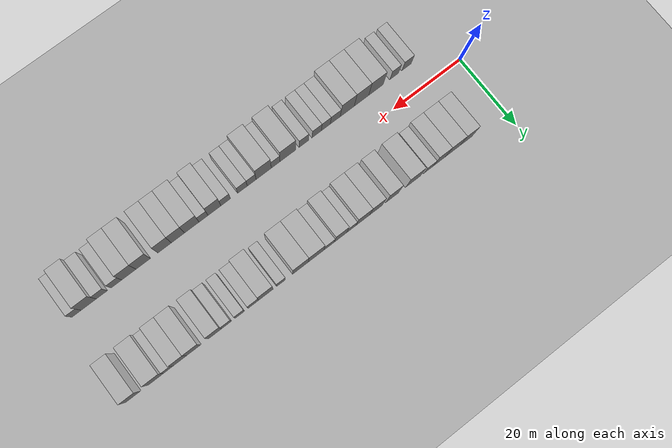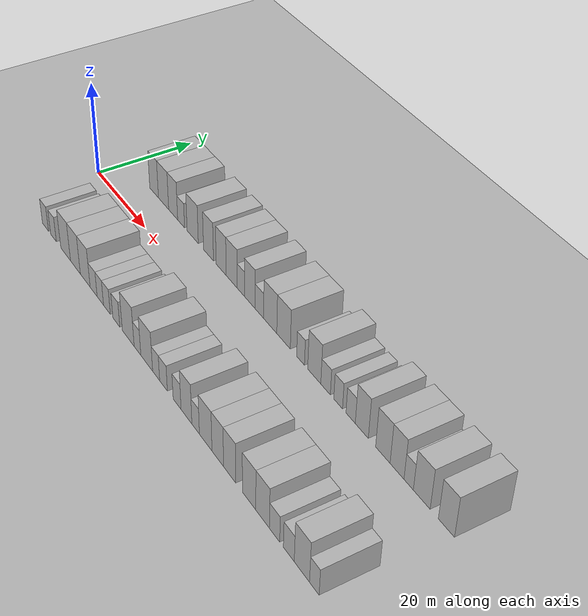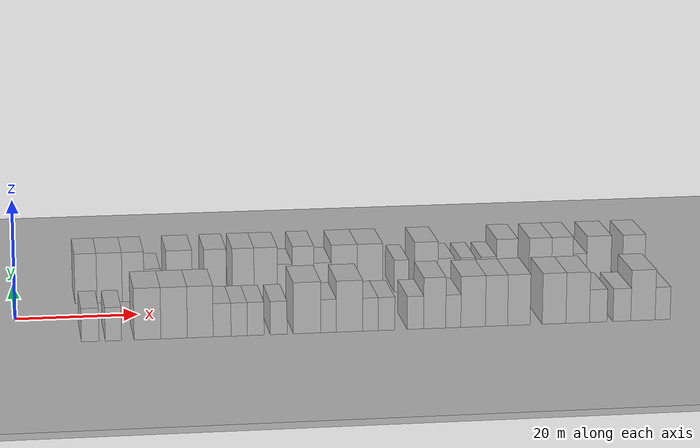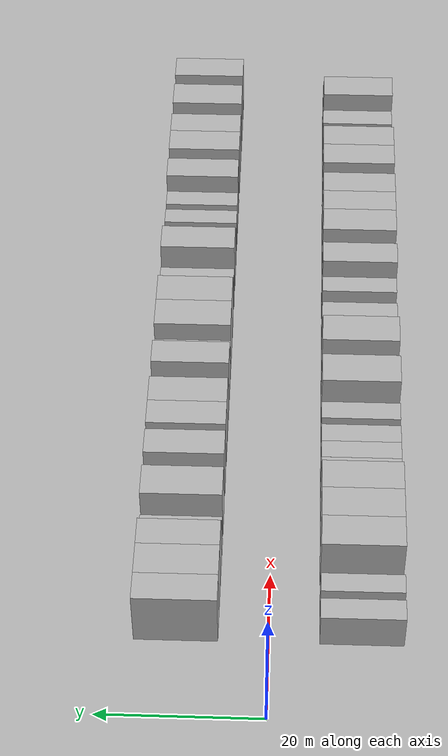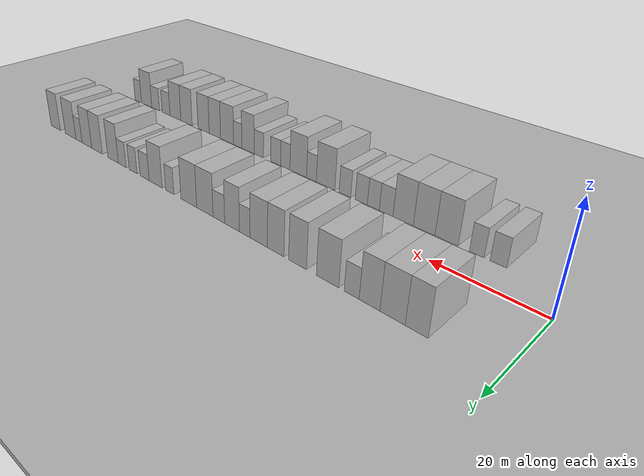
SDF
<sdf version="1.6">
 <world name="default">
  <include><name>ground_plane_1</name><uri>model://HANNAS_ground_plane</uri></include>
  <include>
   <name>ground_plane_2</name>
   <uri>model://HANNAS_ground_plane</uri>
   <pose>100 0 0  0 0 0</pose>
  </include>
  <model name="building_1">
   <static>1</static>
   <pose>11.8167 11.0000 0 0.000000 0.000000 1.570796</pose>
   <link name="link">
    <pose>0 0 4.50 0 0 0</pose>
    <collision name="collision"><geometry><box><size>10.0000 3.6334 9.0000</size></box></geometry></collision>
    <visual name="visual">
     <cast_shadows>0</cast_shadows>
     <geometry><box><size>10.0000 3.6334 9.0000</size></box></geometry>
     <material>
      <script>
       <uri>model://HANNAS_wall/materials/scripts</uri>
       <uri>model://HANNAS_wall/materials/textures</uri>
       <name>vrc/HANNAS_wall</name>
      </script>
     </material>
    </visual>
   </link>
  </model>
  <model name="building_2">
   <static>1</static>
   <pose>15.7360 11.0000 0 0.000000 0.000000 1.570796</pose>
   <link name="link">
    <pose>0 0 4.50 0 0 0</pose>
    <collision name="collision"><geometry><box><size>10.0000 4.2052 9.0000</size></box></geometry></collision>
    <visual name="visual">
     <cast_shadows>0</cast_shadows>
     <geometry><box><size>10.0000 4.2052 9.0000</size></box></geometry>
     <material>
      <script>
       <uri>model://HANNAS_wall/materials/scripts</uri>
       <uri>model://HANNAS_wall/materials/textures</uri>
       <name>vrc/HANNAS_wall</name>
      </script>
     </material>
    </visual>
   </link>
  </model>
  <model name="building_3">
   <static>1</static>
   <pose>19.6542 11.0000 0 0.000000 0.000000 1.570796</pose>
   <link name="link">
    <pose>0 0 4.50 0 0 0</pose>
    <collision name="collision"><geometry><box><size>10.0000 3.6313 9.0000</size></box></geometry></collision>
    <visual name="visual">
     <cast_shadows>0</cast_shadows>
     <geometry><box><size>10.0000 3.6313 9.0000</size></box></geometry>
     <material>
      <script>
       <uri>model://HANNAS_wall/materials/scripts</uri>
       <uri>model://HANNAS_wall/materials/textures</uri>
       <name>vrc/HANNAS_wall</name>
      </script>
     </material>
    </visual>
   </link>
  </model>
  <model name="building_4">
   <static>1</static>
   <pose>22.8331 11.0000 0 0.000000 0.000000 1.570796</pose>
   <link name="link">
    <pose>0 0 3.00 0 0 0</pose>
    <collision name="collision"><geometry><box><size>10.0000 2.7264 6.0000</size></box></geometry></collision>
    <visual name="visual">
     <cast_shadows>0</cast_shadows>
     <geometry><box><size>10.0000 2.7264 6.0000</size></box></geometry>
     <material>
      <script>
       <uri>model://HANNAS_wall/materials/scripts</uri>
       <uri>model://HANNAS_wall/materials/textures</uri>
       <name>vrc/HANNAS_wall</name>
      </script>
     </material>
    </visual>
   </link>
  </model>
  <model name="building_5">
   <static>1</static>
   <pose>27.3559 11.0000 0 0.000000 0.000000 1.570796</pose>
   <link name="link">
    <pose>0 0 4.50 0 0 0</pose>
    <collision name="collision"><geometry><box><size>10.0000 4.3192 9.0000</size></box></geometry></collision>
    <visual name="visual">
     <cast_shadows>0</cast_shadows>
     <geometry><box><size>10.0000 4.3192 9.0000</size></box></geometry>
     <material>
      <script>
       <uri>model://HANNAS_wall/materials/scripts</uri>
       <uri>model://HANNAS_wall/materials/textures</uri>
       <name>vrc/HANNAS_wall</name>
      </script>
     </material>
    </visual>
   </link>
  </model>
  <model name="building_6">
   <static>1</static>
   <pose>33.3677 11.0000 0 0.000000 0.000000 1.570796</pose>
   <link name="link">
    <pose>0 0 4.50 0 0 0</pose>
    <collision name="collision"><geometry><box><size>10.0000 3.7043 9.0000</size></box></geometry></collision>
    <visual name="visual">
     <cast_shadows>0</cast_shadows>
     <geometry><box><size>10.0000 3.7043 9.0000</size></box></geometry>
     <material>
      <script>
       <uri>model://HANNAS_wall/materials/scripts</uri>
       <uri>model://HANNAS_wall/materials/textures</uri>
       <name>vrc/HANNAS_wall</name>
      </script>
     </material>
    </visual>
   </link>
  </model>
  <model name="building_7">
   <static>1</static>
   <pose>38.0490 11.0000 0 0.000000 0.000000 1.570796</pose>
   <link name="link">
    <pose>0 0 4.50 0 0 0</pose>
    <collision name="collision"><geometry><box><size>10.0000 3.6584 9.0000</size></box></geometry></collision>
    <visual name="visual">
     <cast_shadows>0</cast_shadows>
     <geometry><box><size>10.0000 3.6584 9.0000</size></box></geometry>
     <material>
      <script>
       <uri>model://HANNAS_wall/materials/scripts</uri>
       <uri>model://HANNAS_wall/materials/textures</uri>
       <name>vrc/HANNAS_wall</name>
      </script>
     </material>
    </visual>
   </link>
  </model>
  <model name="building_8">
   <static>1</static>
   <pose>41.8445 11.0000 0 0.000000 0.000000 1.570796</pose>
   <link name="link">
    <pose>0 0 4.50 0 0 0</pose>
    <collision name="collision"><geometry><box><size>10.0000 3.9326 9.0000</size></box></geometry></collision>
    <visual name="visual">
     <cast_shadows>0</cast_shadows>
     <geometry><box><size>10.0000 3.9326 9.0000</size></box></geometry>
     <material>
      <script>
       <uri>model://HANNAS_wall/materials/scripts</uri>
       <uri>model://HANNAS_wall/materials/textures</uri>
       <name>vrc/HANNAS_wall</name>
      </script>
     </material>
    </visual>
   </link>
  </model>
  <model name="building_9">
   <static>1</static>
   <pose>45.0715 11.0000 0 0.000000 0.000000 1.570796</pose>
   <link name="link">
    <pose>0 0 3.00 0 0 0</pose>
    <collision name="collision"><geometry><box><size>10.0000 2.5213 6.0000</size></box></geometry></collision>
    <visual name="visual">
     <cast_shadows>0</cast_shadows>
     <geometry><box><size>10.0000 2.5213 6.0000</size></box></geometry>
     <material>
      <script>
       <uri>model://HANNAS_wall/materials/scripts</uri>
       <uri>model://HANNAS_wall/materials/textures</uri>
       <name>vrc/HANNAS_wall</name>
      </script>
     </material>
    </visual>
   </link>
  </model>
  <model name="building_10">
   <static>1</static>
   <pose>48.1417 11.0000 0 0.000000 0.000000 1.570796</pose>
   <link name="link">
    <pose>0 0 4.50 0 0 0</pose>
    <collision name="collision"><geometry><box><size>10.0000 3.6191 9.0000</size></box></geometry></collision>
    <visual name="visual">
     <cast_shadows>0</cast_shadows>
     <geometry><box><size>10.0000 3.6191 9.0000</size></box></geometry>
     <material>
      <script>
       <uri>model://HANNAS_wall/materials/scripts</uri>
       <uri>model://HANNAS_wall/materials/textures</uri>
       <name>vrc/HANNAS_wall</name>
      </script>
     </material>
    </visual>
   </link>
  </model>
  <model name="building_11">
   <static>1</static>
   <pose>51.4159 11.0000 0 0.000000 0.000000 1.570796</pose>
   <link name="link">
    <pose>0 0 3.00 0 0 0</pose>
    <collision name="collision"><geometry><box><size>10.0000 2.9294 6.0000</size></box></geometry></collision>
    <visual name="visual">
     <cast_shadows>0</cast_shadows>
     <geometry><box><size>10.0000 2.9294 6.0000</size></box></geometry>
     <material>
      <script>
       <uri>model://HANNAS_wall/materials/scripts</uri>
       <uri>model://HANNAS_wall/materials/textures</uri>
       <name>vrc/HANNAS_wall</name>
      </script>
     </material>
    </visual>
   </link>
  </model>
  <model name="building_12">
   <static>1</static>
   <pose>55.0609 11.0000 0 0.000000 0.000000 1.570796</pose>
   <link name="link">
    <pose>0 0 4.50 0 0 0</pose>
    <collision name="collision"><geometry><box><size>10.0000 4.3606 9.0000</size></box></geometry></collision>
    <visual name="visual">
     <cast_shadows>0</cast_shadows>
     <geometry><box><size>10.0000 4.3606 9.0000</size></box></geometry>
     <material>
      <script>
       <uri>model://HANNAS_wall/materials/scripts</uri>
       <uri>model://HANNAS_wall/materials/textures</uri>
       <name>vrc/HANNAS_wall</name>
      </script>
     </material>
    </visual>
   </link>
  </model>
  <model name="building_13">
   <static>1</static>
   <pose>59.4143 11.0000 0 0.000000 0.000000 1.570796</pose>
   <link name="link">
    <pose>0 0 4.50 0 0 0</pose>
    <collision name="collision"><geometry><box><size>10.0000 4.3462 9.0000</size></box></geometry></collision>
    <visual name="visual">
     <cast_shadows>0</cast_shadows>
     <geometry><box><size>10.0000 4.3462 9.0000</size></box></geometry>
     <material>
      <script>
       <uri>model://HANNAS_wall/materials/scripts</uri>
       <uri>model://HANNAS_wall/materials/textures</uri>
       <name>vrc/HANNAS_wall</name>
      </script>
     </material>
    </visual>
   </link>
  </model>
  <model name="building_14">
   <static>1</static>
   <pose>64.8036 11.0000 0 0.000000 0.000000 1.570796</pose>
   <link name="link">
    <pose>0 0 3.00 0 0 0</pose>
    <collision name="collision"><geometry><box><size>10.0000 2.4323 6.0000</size></box></geometry></collision>
    <visual name="visual">
     <cast_shadows>0</cast_shadows>
     <geometry><box><size>10.0000 2.4323 6.0000</size></box></geometry>
     <material>
      <script>
       <uri>model://HANNAS_wall/materials/scripts</uri>
       <uri>model://HANNAS_wall/materials/textures</uri>
       <name>vrc/HANNAS_wall</name>
      </script>
     </material>
    </visual>
   </link>
  </model>
  <model name="building_15">
   <static>1</static>
   <pose>69.0086 11.0000 0 0.000000 0.000000 1.570796</pose>
   <link name="link">
    <pose>0 0 4.50 0 0 0</pose>
    <collision name="collision"><geometry><box><size>10.0000 3.9777 9.0000</size></box></geometry></collision>
    <visual name="visual">
     <cast_shadows>0</cast_shadows>
     <geometry><box><size>10.0000 3.9777 9.0000</size></box></geometry>
     <material>
      <script>
       <uri>model://HANNAS_wall/materials/scripts</uri>
       <uri>model://HANNAS_wall/materials/textures</uri>
       <name>vrc/HANNAS_wall</name>
      </script>
     </material>
    </visual>
   </link>
  </model>
  <model name="building_16">
   <static>1</static>
   <pose>72.4203 11.0000 0 0.000000 0.000000 1.570796</pose>
   <link name="link">
    <pose>0 0 3.00 0 0 0</pose>
    <collision name="collision"><geometry><box><size>10.0000 2.8458 6.0000</size></box></geometry></collision>
    <visual name="visual">
     <cast_shadows>0</cast_shadows>
     <geometry><box><size>10.0000 2.8458 6.0000</size></box></geometry>
     <material>
      <script>
       <uri>model://HANNAS_wall/materials/scripts</uri>
       <uri>model://HANNAS_wall/materials/textures</uri>
       <name>vrc/HANNAS_wall</name>
      </script>
     </material>
    </visual>
   </link>
  </model>
  <model name="building_17">
   <static>1</static>
   <pose>76.1147 11.0000 0 0.000000 0.000000 1.570796</pose>
   <link name="link">
    <pose>0 0 3.00 0 0 0</pose>
    <collision name="collision"><geometry><box><size>10.0000 2.5430 6.0000</size></box></geometry></collision>
    <visual name="visual">
     <cast_shadows>0</cast_shadows>
     <geometry><box><size>10.0000 2.5430 6.0000</size></box></geometry>
     <material>
      <script>
       <uri>model://HANNAS_wall/materials/scripts</uri>
       <uri>model://HANNAS_wall/materials/textures</uri>
       <name>vrc/HANNAS_wall</name>
      </script>
     </material>
    </visual>
   </link>
  </model>
  <model name="building_18">
   <static>1</static>
   <pose>79.7044 11.0000 0 0.000000 0.000000 1.570796</pose>
   <link name="link">
    <pose>0 0 3.00 0 0 0</pose>
    <collision name="collision"><geometry><box><size>10.0000 2.6365 6.0000</size></box></geometry></collision>
    <visual name="visual">
     <cast_shadows>0</cast_shadows>
     <geometry><box><size>10.0000 2.6365 6.0000</size></box></geometry>
     <material>
      <script>
       <uri>model://HANNAS_wall/materials/scripts</uri>
       <uri>model://HANNAS_wall/materials/textures</uri>
       <name>vrc/HANNAS_wall</name>
      </script>
     </material>
    </visual>
   </link>
  </model>
  <model name="building_19">
   <static>1</static>
   <pose>82.8372 11.0000 0 0.000000 0.000000 1.570796</pose>
   <link name="link">
    <pose>0 0 4.50 0 0 0</pose>
    <collision name="collision"><geometry><box><size>10.0000 3.6291 9.0000</size></box></geometry></collision>
    <visual name="visual">
     <cast_shadows>0</cast_shadows>
     <geometry><box><size>10.0000 3.6291 9.0000</size></box></geometry>
     <material>
      <script>
       <uri>model://HANNAS_wall/materials/scripts</uri>
       <uri>model://HANNAS_wall/materials/textures</uri>
       <name>vrc/HANNAS_wall</name>
      </script>
     </material>
    </visual>
   </link>
  </model>
  <model name="building_20">
   <static>1</static>
   <pose>88.5892 11.0000 0 0.000000 0.000000 1.570796</pose>
   <link name="link">
    <pose>0 0 4.50 0 0 0</pose>
    <collision name="collision"><geometry><box><size>10.0000 3.8748 9.0000</size></box></geometry></collision>
    <visual name="visual">
     <cast_shadows>0</cast_shadows>
     <geometry><box><size>10.0000 3.8748 9.0000</size></box></geometry>
     <material>
      <script>
       <uri>model://HANNAS_wall/materials/scripts</uri>
       <uri>model://HANNAS_wall/materials/textures</uri>
       <name>vrc/HANNAS_wall</name>
      </script>
     </material>
    </visual>
   </link>
  </model>
  <model name="building_21">
   <static>1</static>
   <pose>92.3459 11.0000 0 0.000000 0.000000 1.570796</pose>
   <link name="link">
    <pose>0 0 4.50 0 0 0</pose>
    <collision name="collision"><geometry><box><size>10.0000 3.6386 9.0000</size></box></geometry></collision>
    <visual name="visual">
     <cast_shadows>0</cast_shadows>
     <geometry><box><size>10.0000 3.6386 9.0000</size></box></geometry>
     <material>
      <script>
       <uri>model://HANNAS_wall/materials/scripts</uri>
       <uri>model://HANNAS_wall/materials/textures</uri>
       <name>vrc/HANNAS_wall</name>
      </script>
     </material>
    </visual>
   </link>
  </model>
  <model name="building_22">
   <static>1</static>
   <pose>95.3682 11.0000 0 0.000000 0.000000 1.570796</pose>
   <link name="link">
    <pose>0 0 3.00 0 0 0</pose>
    <collision name="collision"><geometry><box><size>10.0000 2.4060 6.0000</size></box></geometry></collision>
    <visual name="visual">
     <cast_shadows>0</cast_shadows>
     <geometry><box><size>10.0000 2.4060 6.0000</size></box></geometry>
     <material>
      <script>
       <uri>model://HANNAS_wall/materials/scripts</uri>
       <uri>model://HANNAS_wall/materials/textures</uri>
       <name>vrc/HANNAS_wall</name>
      </script>
     </material>
    </visual>
   </link>
  </model>
  <model name="building_23">
   <static>1</static>
   <pose>98.6794 11.0000 0 0.000000 0.000000 1.570796</pose>
   <link name="link">
    <pose>0 0 4.50 0 0 0</pose>
    <collision name="collision"><geometry><box><size>10.0000 4.2166 9.0000</size></box></geometry></collision>
    <visual name="visual">
     <cast_shadows>0</cast_shadows>
     <geometry><box><size>10.0000 4.2166 9.0000</size></box></geometry>
     <material>
      <script>
       <uri>model://HANNAS_wall/materials/scripts</uri>
       <uri>model://HANNAS_wall/materials/textures</uri>
       <name>vrc/HANNAS_wall</name>
      </script>
     </material>
    </visual>
   </link>
  </model>
  <model name="building_24">
   <static>1</static>
   <pose>104.7415 11.0000 0 0.000000 0.000000 1.570796</pose>
   <link name="link">
    <pose>0 0 4.50 0 0 0</pose>
    <collision name="collision"><geometry><box><size>10.0000 3.9074 9.0000</size></box></geometry></collision>
    <visual name="visual">
     <cast_shadows>0</cast_shadows>
     <geometry><box><size>10.0000 3.9074 9.0000</size></box></geometry>
     <material>
      <script>
       <uri>model://HANNAS_wall/materials/scripts</uri>
       <uri>model://HANNAS_wall/materials/textures</uri>
       <name>vrc/HANNAS_wall</name>
      </script>
     </material>
    </visual>
   </link>
  </model>
  <model name="building_51">
   <static>1</static>
   <pose>11.3902 -11.0000 0 0.000000 0.000000 1.570796</pose>
   <link name="link">
    <pose>0 0 3.00 0 0 0</pose>
    <collision name="collision"><geometry><box><size>10.0000 2.7803 6.0000</size></box></geometry></collision>
    <visual name="visual">
     <cast_shadows>0</cast_shadows>
     <geometry><box><size>10.0000 2.7803 6.0000</size></box></geometry>
     <material>
      <script>
       <uri>model://HANNAS_wall/materials/scripts</uri>
       <uri>model://HANNAS_wall/materials/textures</uri>
       <name>vrc/HANNAS_wall</name>
      </script>
     </material>
    </visual>
   </link>
  </model>
  <model name="building_52">
   <static>1</static>
   <pose>15.0646 -11.0000 0 0.000000 0.000000 1.570796</pose>
   <link name="link">
    <pose>0 0 3.00 0 0 0</pose>
    <collision name="collision"><geometry><box><size>10.0000 2.5684 6.0000</size></box></geometry></collision>
    <visual name="visual">
     <cast_shadows>0</cast_shadows>
     <geometry><box><size>10.0000 2.5684 6.0000</size></box></geometry>
     <material>
      <script>
       <uri>model://HANNAS_wall/materials/scripts</uri>
       <uri>model://HANNAS_wall/materials/textures</uri>
       <name>vrc/HANNAS_wall</name>
      </script>
     </material>
    </visual>
   </link>
  </model>
  <model name="building_53">
   <static>1</static>
   <pose>20.4821 -11.0000 0 0.000000 0.000000 1.570796</pose>
   <link name="link">
    <pose>0 0 4.50 0 0 0</pose>
    <collision name="collision"><geometry><box><size>10.0000 4.2666 9.0000</size></box></geometry></collision>
    <visual name="visual">
     <cast_shadows>0</cast_shadows>
     <geometry><box><size>10.0000 4.2666 9.0000</size></box></geometry>
     <material>
      <script>
       <uri>model://HANNAS_wall/materials/scripts</uri>
       <uri>model://HANNAS_wall/materials/textures</uri>
       <name>vrc/HANNAS_wall</name>
      </script>
     </material>
    </visual>
   </link>
  </model>
  <model name="building_54">
   <static>1</static>
   <pose>24.7243 -11.0000 0 0.000000 0.000000 1.570796</pose>
   <link name="link">
    <pose>0 0 4.50 0 0 0</pose>
    <collision name="collision"><geometry><box><size>10.0000 4.2177 9.0000</size></box></geometry></collision>
    <visual name="visual">
     <cast_shadows>0</cast_shadows>
     <geometry><box><size>10.0000 4.2177 9.0000</size></box></geometry>
     <material>
      <script>
       <uri>model://HANNAS_wall/materials/scripts</uri>
       <uri>model://HANNAS_wall/materials/textures</uri>
       <name>vrc/HANNAS_wall</name>
      </script>
     </material>
    </visual>
   </link>
  </model>
  <model name="building_55">
   <static>1</static>
   <pose>28.8939 -11.0000 0 0.000000 0.000000 1.570796</pose>
   <link name="link">
    <pose>0 0 4.50 0 0 0</pose>
    <collision name="collision"><geometry><box><size>10.0000 4.1216 9.0000</size></box></geometry></collision>
    <visual name="visual">
     <cast_shadows>0</cast_shadows>
     <geometry><box><size>10.0000 4.1216 9.0000</size></box></geometry>
     <material>
      <script>
       <uri>model://HANNAS_wall/materials/scripts</uri>
       <uri>model://HANNAS_wall/materials/textures</uri>
       <name>vrc/HANNAS_wall</name>
      </script>
     </material>
    </visual>
   </link>
  </model>
  <model name="building_56">
   <static>1</static>
   <pose>32.3913 -11.0000 0 0.000000 0.000000 1.570796</pose>
   <link name="link">
    <pose>0 0 3.00 0 0 0</pose>
    <collision name="collision"><geometry><box><size>10.0000 2.8733 6.0000</size></box></geometry></collision>
    <visual name="visual">
     <cast_shadows>0</cast_shadows>
     <geometry><box><size>10.0000 2.8733 6.0000</size></box></geometry>
     <material>
      <script>
       <uri>model://HANNAS_wall/materials/scripts</uri>
       <uri>model://HANNAS_wall/materials/textures</uri>
       <name>vrc/HANNAS_wall</name>
      </script>
     </material>
    </visual>
   </link>
  </model>
  <model name="building_57">
   <static>1</static>
   <pose>35.1243 -11.0000 0 0.000000 0.000000 1.570796</pose>
   <link name="link">
    <pose>0 0 3.00 0 0 0</pose>
    <collision name="collision"><geometry><box><size>10.0000 2.5926 6.0000</size></box></geometry></collision>
    <visual name="visual">
     <cast_shadows>0</cast_shadows>
     <geometry><box><size>10.0000 2.5926 6.0000</size></box></geometry>
     <material>
      <script>
       <uri>model://HANNAS_wall/materials/scripts</uri>
       <uri>model://HANNAS_wall/materials/textures</uri>
       <name>vrc/HANNAS_wall</name>
      </script>
     </material>
    </visual>
   </link>
  </model>
  <model name="building_58">
   <static>1</static>
   <pose>37.7708 -11.0000 0 0.000000 0.000000 1.570796</pose>
   <link name="link">
    <pose>0 0 3.00 0 0 0</pose>
    <collision name="collision"><geometry><box><size>10.0000 2.7005 6.0000</size></box></geometry></collision>
    <visual name="visual">
     <cast_shadows>0</cast_shadows>
     <geometry><box><size>10.0000 2.7005 6.0000</size></box></geometry>
     <material>
      <script>
       <uri>model://HANNAS_wall/materials/scripts</uri>
       <uri>model://HANNAS_wall/materials/textures</uri>
       <name>vrc/HANNAS_wall</name>
      </script>
     </material>
    </visual>
   </link>
  </model>
  <model name="building_59">
   <static>1</static>
   <pose>41.4705 -11.0000 0 0.000000 0.000000 1.570796</pose>
   <link name="link">
    <pose>0 0 3.00 0 0 0</pose>
    <collision name="collision"><geometry><box><size>10.0000 2.6989 6.0000</size></box></geometry></collision>
    <visual name="visual">
     <cast_shadows>0</cast_shadows>
     <geometry><box><size>10.0000 2.6989 6.0000</size></box></geometry>
     <material>
      <script>
       <uri>model://HANNAS_wall/materials/scripts</uri>
       <uri>model://HANNAS_wall/materials/textures</uri>
       <name>vrc/HANNAS_wall</name>
      </script>
     </material>
    </visual>
   </link>
  </model>
  <model name="building_60">
   <static>1</static>
   <pose>46.0555 -11.0000 0 0.000000 0.000000 1.570796</pose>
   <link name="link">
    <pose>0 0 4.50 0 0 0</pose>
    <collision name="collision"><geometry><box><size>10.0000 4.4712 9.0000</size></box></geometry></collision>
    <visual name="visual">
     <cast_shadows>0</cast_shadows>
     <geometry><box><size>10.0000 4.4712 9.0000</size></box></geometry>
     <material>
      <script>
       <uri>model://HANNAS_wall/materials/scripts</uri>
       <uri>model://HANNAS_wall/materials/textures</uri>
       <name>vrc/HANNAS_wall</name>
      </script>
     </material>
    </visual>
   </link>
  </model>
  <model name="building_61">
   <static>1</static>
   <pose>49.5337 -11.0000 0 0.000000 0.000000 1.570796</pose>
   <link name="link">
    <pose>0 0 3.00 0 0 0</pose>
    <collision name="collision"><geometry><box><size>10.0000 2.4851 6.0000</size></box></geometry></collision>
    <visual name="visual">
     <cast_shadows>0</cast_shadows>
     <geometry><box><size>10.0000 2.4851 6.0000</size></box></geometry>
     <material>
      <script>
       <uri>model://HANNAS_wall/materials/scripts</uri>
       <uri>model://HANNAS_wall/materials/textures</uri>
       <name>vrc/HANNAS_wall</name>
      </script>
     </material>
    </visual>
   </link>
  </model>
  <model name="building_62">
   <static>1</static>
   <pose>52.9226 -11.0000 0 0.000000 0.000000 1.570796</pose>
   <link name="link">
    <pose>0 0 4.50 0 0 0</pose>
    <collision name="collision"><geometry><box><size>10.0000 4.2927 9.0000</size></box></geometry></collision>
    <visual name="visual">
     <cast_shadows>0</cast_shadows>
     <geometry><box><size>10.0000 4.2927 9.0000</size></box></geometry>
     <material>
      <script>
       <uri>model://HANNAS_wall/materials/scripts</uri>
       <uri>model://HANNAS_wall/materials/textures</uri>
       <name>vrc/HANNAS_wall</name>
      </script>
     </material>
    </visual>
   </link>
  </model>
  <model name="building_63">
   <static>1</static>
   <pose>56.3166 -11.0000 0 0.000000 0.000000 1.570796</pose>
   <link name="link">
    <pose>0 0 3.00 0 0 0</pose>
    <collision name="collision"><geometry><box><size>10.0000 2.4952 6.0000</size></box></geometry></collision>
    <visual name="visual">
     <cast_shadows>0</cast_shadows>
     <geometry><box><size>10.0000 2.4952 6.0000</size></box></geometry>
     <material>
      <script>
       <uri>model://HANNAS_wall/materials/scripts</uri>
       <uri>model://HANNAS_wall/materials/textures</uri>
       <name>vrc/HANNAS_wall</name>
      </script>
     </material>
    </visual>
   </link>
  </model>
  <model name="building_64">
   <static>1</static>
   <pose>58.9187 -11.0000 0 0.000000 0.000000 1.570796</pose>
   <link name="link">
    <pose>0 0 3.00 0 0 0</pose>
    <collision name="collision"><geometry><box><size>10.0000 2.7091 6.0000</size></box></geometry></collision>
    <visual name="visual">
     <cast_shadows>0</cast_shadows>
     <geometry><box><size>10.0000 2.7091 6.0000</size></box></geometry>
     <material>
      <script>
       <uri>model://HANNAS_wall/materials/scripts</uri>
       <uri>model://HANNAS_wall/materials/textures</uri>
       <name>vrc/HANNAS_wall</name>
      </script>
     </material>
    </visual>
   </link>
  </model>
  <model name="building_65">
   <static>1</static>
   <pose>63.6160 -11.0000 0 0.000000 0.000000 1.570796</pose>
   <link name="link">
    <pose>0 0 3.00 0 0 0</pose>
    <collision name="collision"><geometry><box><size>10.0000 2.6856 6.0000</size></box></geometry></collision>
    <visual name="visual">
     <cast_shadows>0</cast_shadows>
     <geometry><box><size>10.0000 2.6856 6.0000</size></box></geometry>
     <material>
      <script>
       <uri>model://HANNAS_wall/materials/scripts</uri>
       <uri>model://HANNAS_wall/materials/textures</uri>
       <name>vrc/HANNAS_wall</name>
      </script>
     </material>
    </visual>
   </link>
  </model>
  <model name="building_66">
   <static>1</static>
   <pose>66.7633 -11.0000 0 0.000000 0.000000 1.570796</pose>
   <link name="link">
    <pose>0 0 4.50 0 0 0</pose>
    <collision name="collision"><geometry><box><size>10.0000 3.6089 9.0000</size></box></geometry></collision>
    <visual name="visual">
     <cast_shadows>0</cast_shadows>
     <geometry><box><size>10.0000 3.6089 9.0000</size></box></geometry>
     <material>
      <script>
       <uri>model://HANNAS_wall/materials/scripts</uri>
       <uri>model://HANNAS_wall/materials/textures</uri>
       <name>vrc/HANNAS_wall</name>
      </script>
     </material>
    </visual>
   </link>
  </model>
  <model name="building_67">
   <static>1</static>
   <pose>69.8033 -11.0000 0 0.000000 0.000000 1.570796</pose>
   <link name="link">
    <pose>0 0 3.00 0 0 0</pose>
    <collision name="collision"><geometry><box><size>10.0000 2.4711 6.0000</size></box></geometry></collision>
    <visual name="visual">
     <cast_shadows>0</cast_shadows>
     <geometry><box><size>10.0000 2.4711 6.0000</size></box></geometry>
     <material>
      <script>
       <uri>model://HANNAS_wall/materials/scripts</uri>
       <uri>model://HANNAS_wall/materials/textures</uri>
       <name>vrc/HANNAS_wall</name>
      </script>
     </material>
    </visual>
   </link>
  </model>
  <model name="building_68">
   <static>1</static>
   <pose>73.0577 -11.0000 0 0.000000 0.000000 1.570796</pose>
   <link name="link">
    <pose>0 0 4.50 0 0 0</pose>
    <collision name="collision"><geometry><box><size>10.0000 4.0379 9.0000</size></box></geometry></collision>
    <visual name="visual">
     <cast_shadows>0</cast_shadows>
     <geometry><box><size>10.0000 4.0379 9.0000</size></box></geometry>
     <material>
      <script>
       <uri>model://HANNAS_wall/materials/scripts</uri>
       <uri>model://HANNAS_wall/materials/textures</uri>
       <name>vrc/HANNAS_wall</name>
      </script>
     </material>
    </visual>
   </link>
  </model>
  <model name="building_69">
   <static>1</static>
   <pose>76.8930 -11.0000 0 0.000000 0.000000 1.570796</pose>
   <link name="link">
    <pose>0 0 4.50 0 0 0</pose>
    <collision name="collision"><geometry><box><size>10.0000 3.6325 9.0000</size></box></geometry></collision>
    <visual name="visual">
     <cast_shadows>0</cast_shadows>
     <geometry><box><size>10.0000 3.6325 9.0000</size></box></geometry>
     <material>
      <script>
       <uri>model://HANNAS_wall/materials/scripts</uri>
       <uri>model://HANNAS_wall/materials/textures</uri>
       <name>vrc/HANNAS_wall</name>
      </script>
     </material>
    </visual>
   </link>
  </model>
  <model name="building_70">
   <static>1</static>
   <pose>80.5640 -11.0000 0 0.000000 0.000000 1.570796</pose>
   <link name="link">
    <pose>0 0 4.50 0 0 0</pose>
    <collision name="collision"><geometry><box><size>10.0000 3.7095 9.0000</size></box></geometry></collision>
    <visual name="visual">
     <cast_shadows>0</cast_shadows>
     <geometry><box><size>10.0000 3.7095 9.0000</size></box></geometry>
     <material>
      <script>
       <uri>model://HANNAS_wall/materials/scripts</uri>
       <uri>model://HANNAS_wall/materials/textures</uri>
       <name>vrc/HANNAS_wall</name>
      </script>
     </material>
    </visual>
   </link>
  </model>
  <model name="building_71">
   <static>1</static>
   <pose>86.3734 -11.0000 0 0.000000 0.000000 1.570796</pose>
   <link name="link">
    <pose>0 0 4.50 0 0 0</pose>
    <collision name="collision"><geometry><box><size>10.0000 3.9093 9.0000</size></box></geometry></collision>
    <visual name="visual">
     <cast_shadows>0</cast_shadows>
     <geometry><box><size>10.0000 3.9093 9.0000</size></box></geometry>
     <material>
      <script>
       <uri>model://HANNAS_wall/materials/scripts</uri>
       <uri>model://HANNAS_wall/materials/textures</uri>
       <name>vrc/HANNAS_wall</name>
      </script>
     </material>
    </visual>
   </link>
  </model>
  <model name="building_72">
   <static>1</static>
   <pose>90.2793 -11.0000 0 0.000000 0.000000 1.570796</pose>
   <link name="link">
    <pose>0 0 4.50 0 0 0</pose>
    <collision name="collision"><geometry><box><size>10.0000 3.9025 9.0000</size></box></geometry></collision>
    <visual name="visual">
     <cast_shadows>0</cast_shadows>
     <geometry><box><size>10.0000 3.9025 9.0000</size></box></geometry>
     <material>
      <script>
       <uri>model://HANNAS_wall/materials/scripts</uri>
       <uri>model://HANNAS_wall/materials/textures</uri>
       <name>vrc/HANNAS_wall</name>
      </script>
     </material>
    </visual>
   </link>
  </model>
  <model name="building_73">
   <static>1</static>
   <pose>93.6748 -11.0000 0 0.000000 0.000000 1.570796</pose>
   <link name="link">
    <pose>0 0 3.00 0 0 0</pose>
    <collision name="collision"><geometry><box><size>10.0000 2.8886 6.0000</size></box></geometry></collision>
    <visual name="visual">
     <cast_shadows>0</cast_shadows>
     <geometry><box><size>10.0000 2.8886 6.0000</size></box></geometry>
     <material>
      <script>
       <uri>model://HANNAS_wall/materials/scripts</uri>
       <uri>model://HANNAS_wall/materials/textures</uri>
       <name>vrc/HANNAS_wall</name>
      </script>
     </material>
    </visual>
   </link>
  </model>
  <model name="building_74">
   <static>1</static>
   <pose>97.5943 -11.0000 0 0.000000 0.000000 1.570796</pose>
   <link name="link">
    <pose>0 0 3.00 0 0 0</pose>
    <collision name="collision"><geometry><box><size>10.0000 2.9505 6.0000</size></box></geometry></collision>
    <visual name="visual">
     <cast_shadows>0</cast_shadows>
     <geometry><box><size>10.0000 2.9505 6.0000</size></box></geometry>
     <material>
      <script>
       <uri>model://HANNAS_wall/materials/scripts</uri>
       <uri>model://HANNAS_wall/materials/textures</uri>
       <name>vrc/HANNAS_wall</name>
      </script>
     </material>
    </visual>
   </link>
  </model>
  <model name="building_75">
   <static>1</static>
   <pose>101.0947 -11.0000 0 0.000000 0.000000 1.570796</pose>
   <link name="link">
    <pose>0 0 4.50 0 0 0</pose>
    <collision name="collision"><geometry><box><size>10.0000 4.0502 9.0000</size></box></geometry></collision>
    <visual name="visual">
     <cast_shadows>0</cast_shadows>
     <geometry><box><size>10.0000 4.0502 9.0000</size></box></geometry>
     <material>
      <script>
       <uri>model://HANNAS_wall/materials/scripts</uri>
       <uri>model://HANNAS_wall/materials/textures</uri>
       <name>vrc/HANNAS_wall</name>
      </script>
     </material>
    </visual>
   </link>
  </model>
  <model name="building_76">
   <static>1</static>
   <pose>104.3675 -11.0000 0 0.000000 0.000000 1.570796</pose>
   <link name="link">
    <pose>0 0 3.00 0 0 0</pose>
    <collision name="collision"><geometry><box><size>10.0000 2.4955 6.0000</size></box></geometry></collision>
    <visual name="visual">
     <cast_shadows>0</cast_shadows>
     <geometry><box><size>10.0000 2.4955 6.0000</size></box></geometry>
     <material>
      <script>
       <uri>model://HANNAS_wall/materials/scripts</uri>
       <uri>model://HANNAS_wall/materials/textures</uri>
       <name>vrc/HANNAS_wall</name>
      </script>
     </material>
    </visual>
   </link>
  </model>
 </world>
</sdf>
